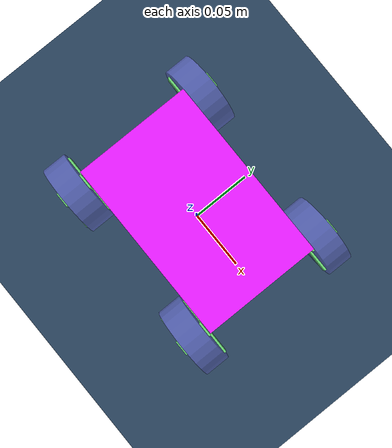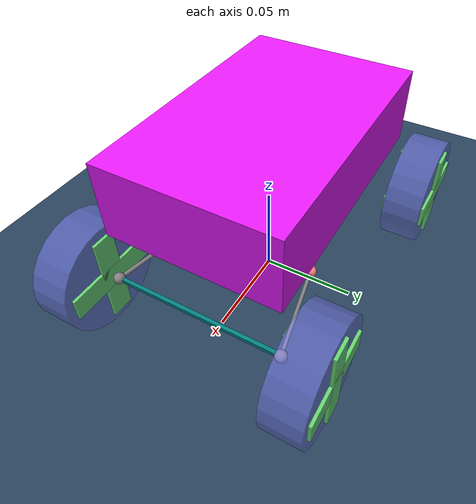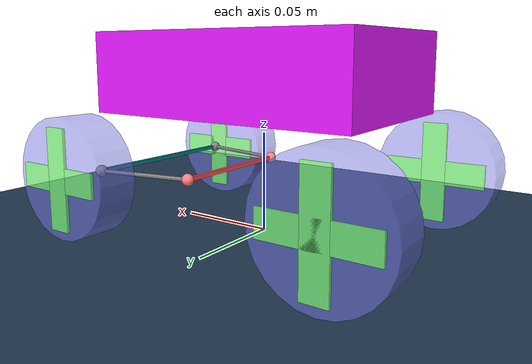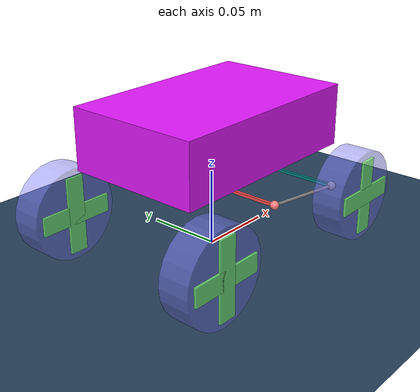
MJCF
<mujoco>
  <compiler autolimits="true"/>

  <asset>
    <texture name="grid" type="2d" builtin="checker" width="512" height="512" rgb1=".1 .2 .3" rgb2=".2 .3 .4"/>
    <material name="grid" texture="grid" texrepeat="1 1" texuniform="true" reflectance=".2"/>

  </asset>

  <default>
    <joint damping=".03" actuatorfrcrange="-0.5 0.5"/>
    <default class="wheel">
      <geom type="cylinder" size=".03 .01" rgba=".5 .5 1 0.5"/>
    </default>
    <default class="decor">
      <site type="box" rgba=".5 1 .5 0.8"/>
    </default>
  </default>

  <worldbody>
    <geom type="plane" size="3 3 .01" material="grid"/>
    <body name="car" pos="0 0 .03">
      <freejoint/>
      <light name="top light" pos="0 0 2" mode="trackcom" diffuse=".4 .4 .4"/>
      <geom name="chasis" type="box" size="0.07 0.045 0.02" pos="0 0 0.05" rgba="0.9 0.1 1 1"/>
      <body name="left wheel" pos="-.07 .06 0" zaxis="0 1 0">
        <joint name="left"/>
        <geom class="wheel"/>
        <site class="decor" size=".006 .025 .0115"/>
        <site class="decor" size=".025 .006 .0115"/>
      </body>
      <body name="right wheel" pos="-.07 -.06 0" zaxis="0 1 0">
        <joint name="right"/>
        <geom class="wheel"/>
        <site class="decor" size=".006 .025 .0115"/>
        <site class="decor" size=".025 .006 .0115"/>
      </body>

      <body name="front left" pos=".07 .06 0" zaxis="0 1 0">
        <joint name="front left" type="hinge" range="-1 1" axis="0 1 0"/>

        <joint name="j3"/>
        <geom class="wheel"/>
        <site class="decor" size=".006 .025 .0115"/>
        <site class="decor" size=".025 .006 .0115"/>
      </body>
      <body name="front right " pos=".07 -.06 0" zaxis="0 1 0">
        <joint name="front right" type="hinge" range="-1 1" axis="0 1 0"/>
        <joint name="j4"/>
        <geom class="wheel"/>
        <site class="decor" size=".006 .025 .0115"/>
        <site class="decor" size=".025 .006 .0115"/>
      </body>

      <body name="fixed" pos="0.07 0 0" zaxis="1 0 0">
        <geom name="g4" type="box" size="0.001 0.045 0.001" rgba="0 0.5 0.5 1"/>
        <site name="s0" size="0.003" pos="0 0.045 0"/>
        <site name="s1" size="0.003" pos="0 -0.045 0"/>

     </body>

      <body pos="0.02 0 0">
        <joint name="acker" type="slide" axis="0 1 0" />

        <geom type="box" size="0.001 0.035 0.001" rgba="1 0.3 0.3 1" />
        <site name="s5" size="0.003" pos="0 -0.035 0" rgba="1 0.5 0.5 1"/>
        <site name="s6" size="0.003" pos="0 0.035 0" rgba="1 0.5 0.5 1"/>
      </body>

    </body>
  </worldbody>

  <tendon>
    <fixed name="frontwheels">
      <joint joint="j4" coef="-.5"/>

      <joint joint="j3" coef="-.5"/>
    </fixed>
    <fixed name="backwheels">
      <joint joint="left" coef=".5"/>
      <joint joint="right" coef=".5"/>
    </fixed>

    <fixed name="4x4">
      <joint joint="j4" coef=".5"/>
      <joint joint="j3" coef=".5"/>
      <joint joint="left" coef=".5"/>
      <joint joint="right" coef=".5"/>
    </fixed>

    <fixed name="turn_acker">
      <joint joint="front right" coef="-1"/>
      <joint joint="front left" coef="-1"/>
      <joint joint="acker" coef="-.5" />

    </fixed>
    <fixed name="turn">
      <joint joint="front right" coef="-0.5"/>
      <joint joint="front left" coef="-0.5"/>

    </fixed>

    <fixed name="turn left wheel">
      <joint joint="front left" coef="-0.5"/>
    </fixed>

    <fixed name="turn right wheel">
      <joint joint="front right" coef="-0.5"/>
    </fixed>

    <spatial  width=".001" stiffness="1000">
      <site site="s0"/>
      <site site="s6"/>
      <site site="s5"/>
      <site site="s1"/>
    </spatial>

  </tendon>

  <actuator>
    <motor name="run_front_wheels" tendon="frontwheels" ctrlrange="-100 100"/>
    <motor name="run_back_wheels" tendon="backwheels" ctrlrange="-100 100"/>
    <motor name="4x4" tendon="4x4" ctrlrange="-100 100"/>

    <motor name="turn_acker" tendon="turn_acker" ctrlrange="-1 1"/>
    <motor name="turn" tendon="turn" ctrlrange="-1 1"/>

    <motor name="turn left wheel" tendon="turn left wheel" ctrlrange="-1 1"/>

    <motor name="turn right wheel" tendon="turn right wheel" ctrlrange="-1 1"/>

  </actuator>

  <sensor>
    <jointactuatorfrc name="right" joint="right"/>
    <jointactuatorfrc name="left" joint="left"/>
  </sensor>
</mujoco>
